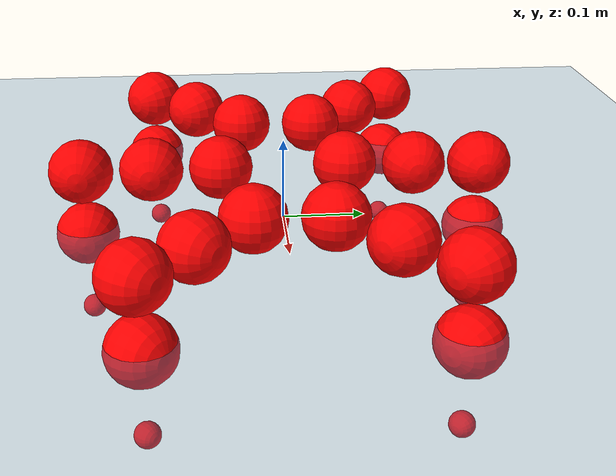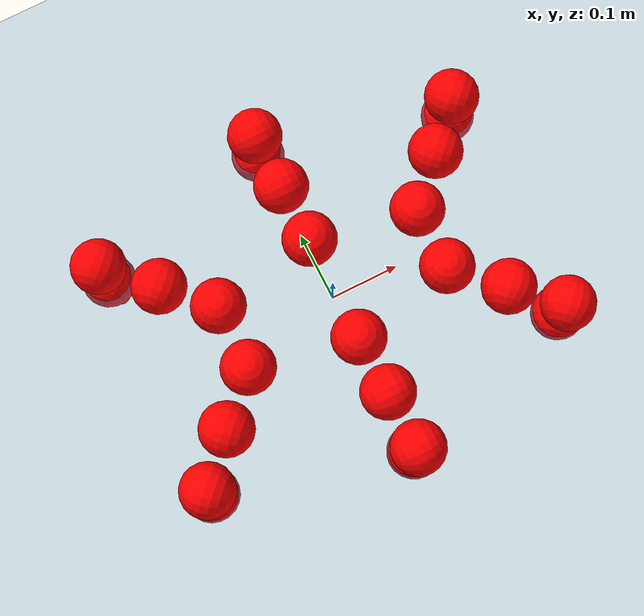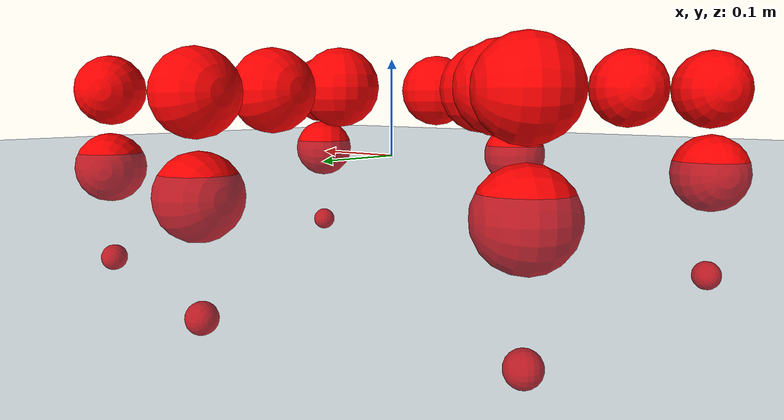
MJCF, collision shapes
<mujoco model="Golem">
  <compiler angle="radian" assetdir="assets" balanceinertia="true" inertiafromgeom="false"/>

  <option timestep="0.005" density="1.2" viscosity="2e-05"/>

  <size nkey="1"/>

  <visual>
    <quality shadowsize="8192"/>
    <map shadowclip="0.5"/>
  </visual>

  <default>
    <default class="/">
      <joint armature="0.01" damping="0.01" frictionloss="0.01"/>
      <geom contype="0" conaffinity="0" group="1" solref="-1000 -80"/>
      <site size="0.01 0.005 0.005" group="5"/>
      <general forcelimited="true" biastype="affine" gainprm="25" biasprm="0 -25 -0.5"/>
      <default class="visual">
        <geom type="mesh" group="2"/>
      </default>
      <default class="collision">
        <geom group="3"/>
      </default>
      <default class="foot">
        <geom size="0.01 0 0" condim="6" group="4" priority="1" solimp="0.015 1 0.01"/>
      </default>
      <default class="reward_collision_sphere">
        <geom group="5" rgba="1 0 0 1"/>
      </default>
    </default>
  </default>

  <asset>
    <texture type="skybox" colorspace="auto" name="//unnamed_texture_0" builtin="gradient" rgb1="0.95 0.95 0.95" rgb2="0.95 0.95 0.95" width="100" height="600"/>
    <texture type="2d" colorspace="auto" name="texplane" builtin="checker" rgb1="0.345 0.575 0.748" rgb2="0.345 0.575 0.748" markrgb="1 1 1" width="512" height="512"/>
    <material name="MatPlane" class="/" texture="texplane" texuniform="true" texrepeat="2 2" specular="0.9"/>
    <mesh name="body" class="/" file="body.stl" scale="0.001 0.001 0.001"/>
    <mesh name="coxa" class="/" file="coxa.stl" scale="0.001 0.001 0.001"/>
    <mesh name="femur" class="/" file="femur.stl" scale="0.001 0.001 0.001"/>
    <mesh name="tibia" class="/" file="tibia.stl" scale="0.001 0.001 0.001"/>
    <mesh name="tarsus" class="/" file="tarsus.stl" scale="0.001 0.001 0.001"/>
  </asset>

  <worldbody>
    <geom name="floor" class="/" size="100 100 0.125" type="plane" group="0" material="MatPlane"/>
    <light name="toplight_shadow" class="/" pos="0 0 5" dir="0.0990148 0.0990148 -0.990148" type="directional" ambient="0.04 0.04 0.04" diffuse="0.55 0.55 0.55" specular="0.12 0.12 0.12"/>
    <light name="toplight_fill" class="/" pos="0 0 5" dir="0.0990148 0.0990148 -0.990148" type="directional" castshadow="false" ambient="0.04 0.04 0.04" diffuse="0.3 0.3 0.3" specular="0.08 0.08 0.08"/>
    <body name="trunk" pos="0.000674919 0.000550561 -0.00239385" quat="1 -9.03614e-05 -5.79711e-05 0.000114049">
      <inertial pos="8.57327e-05 -0.000103204 -0.00214468" quat="0.99999 -0.00194855 0.00133939 -0.00379761" mass="3.33077" diaginertia="0.00773572 0.00299296 0.0191"/>
      <joint name="//unnamed_joint_0" type="free"/>
      <geom name="//unnamed_geom_1" class="/" pos="0 0 0.0729199" quat="1 0 0 0" type="mesh" rgba="0.9 0.9 0.9 1" mesh="body"/>
      <site name="imu" class="/" pos="0.126872 -0.00242775 0.109227" size="0.00958983"/>
      <camera name="track" class="/" pos="0 -1.56575 0" quat="0.707107 0.707107 0 0" mode="trackcom"/>
      <camera name="ego_camera" class="/" pos="0.124111 0 0.113937" quat="-0.5 -0.5 0.5 0.5"/>
      <body name="coxa_RR" pos="-0.170685 -0.0656803 0.0724915" quat="0.382664 1.91903e-05 1.05643e-05 -0.923887">
        <inertial pos="0.00018412 -0.00228985 0.000974021" quat="0.999997 -0.00174126 -0.00067167 -0.00167375" mass="0.170923" diaginertia="0.00761152 0.00291464 0.018346"/>
        <joint name="coxa_joint_RR" class="/" pos="0 0 0" axis="-0.00627875 0.00459313 -0.99997" range="-3.13582 3.12802" armature="0.00965246" damping="0.0142395" frictionloss="0.00972247"/>
        <geom name="//unnamed_geom_2" class="/" type="mesh" rgba="0.2 0.2 0.2 1" mesh="coxa"/>
        <geom name="//unnamed_geom_3" class="reward_collision_sphere" size="0.0383593" pos="-0.0286411 0 0"/>
        <body name="femur_RR" pos="0.0581585 -0.000701968 0.000338659" quat="0.499793 -0.500056 0.499986 0.500164">
          <inertial pos="0.000849516 -0.000229571 0.000328183" quat="0.999999 2.14273e-05 0.00141984 -0.00025393" mass="0.175766" diaginertia="0.00789546 0.00290914 0.0190752"/>
          <joint name="femur_joint_RR" class="/" pos="0 0 0" axis="0.000955863 -0.00122837 -0.999999" range="-3.15638 3.09701" armature="0.00928647" damping="0" frictionloss="0.00997547"/>
          <geom name="//unnamed_geom_4" class="/" type="mesh" rgba="0.9 0.9 0.9 1" mesh="femur"/>
          <geom name="//unnamed_geom_5" class="reward_collision_sphere" size="0.0383593"/>
          <body name="tibia_RR" pos="0.00112111 -0.083567 0.00190569" quat="-0.000193501 1 -2.54993e-05 -0.000118708">
            <inertial pos="-0.00166294 -6.9066e-05 -8.5628e-05" quat="0.999985 -0.00153567 -0.00190221 -0.00490999" mass="0.176042" diaginertia="0.00783688 0.00293159 0.0192246"/>
            <joint name="tibia_joint_RR" class="/" pos="0 0 0" axis="0.00395839 0.000154542 0.999992" range="-3.18561 3.15778" armature="0.00915411" damping="0" frictionloss="0.00981285"/>
            <geom name="//unnamed_geom_6" class="/" type="mesh" rgba="0.2 0.2 0.2 1" mesh="tibia"/>
            <geom name="//unnamed_geom_7" class="reward_collision_sphere" size="0.0383593"/>
            <body name="tarsus_RR" pos="0.0821683 0.00135338 0.00032641" quat="1 -0.000400016 -0.000222799 -2.62427e-05">
              <inertial pos="0.0561326 0.00240465 -0.00085361" quat="0.503435 0.496438 0.500646 0.499455" mass="0.175252" diaginertia="0.00792527 0.00291916 0.019207"/>
              <joint name="tarsus_joint_RR" class="/" pos="0 0 0" axis="0.000473364 -0.000492003 1" range="-3.13652 3.13487" armature="0.0101146" damping="0.00803335" frictionloss="0.0102108"/>
              <geom name="//unnamed_geom_8" class="/" type="mesh" rgba="0.9 0.9 0.9 1" mesh="tarsus"/>
              <geom name="foot_1" class="foot" size="0.00923212" pos="0.106927 0 0" quat="0 -0.707107 0 0.707107"/>
              <geom name="//unnamed_geom_10" class="reward_collision_sphere" size="0.0383593"/>
              <geom name="//unnamed_geom_11" class="reward_collision_sphere" size="0.0143847" pos="0.10263 0 0"/>
              <site name="foot_1" class="foot" pos="0.106927 0 0" quat="0 -0.707107 0 0.707107" size="0.00958983"/>
            </body>
          </body>
        </body>
      </body>
      <body name="coxa_RM" pos="-0.000339734 -0.104641 0.070857" quat="0.706708 -0.000440786 -0.00105106 -0.707504">
        <inertial pos="-0.00168734 0.000254058 0.00109952" quat="1 0.000228239 -8.99702e-06 -0.000620103" mass="0.173841" diaginertia="0.00771902 0.00288554 0.0194881"/>
        <joint name="coxa_joint_RM" class="/" pos="0 0 0" axis="-5.04206e-05 0.000429232 -1" range="-3.18949 3.14285" armature="0.0101904" damping="0.0118969" frictionloss="0.00952537"/>
        <geom name="//unnamed_geom_12" class="/" type="mesh" rgba="0.2 0.2 0.2 1" mesh="coxa"/>
        <geom name="//unnamed_geom_13" class="reward_collision_sphere" size="0.0383593" pos="-0.0286411 0 0"/>
        <body name="femur_RM" pos="0.0546542 0.000568941 -0.000302249" quat="0.500162 -0.500439 0.49919 0.500208">
          <inertial pos="-0.000672671 0.000820302 -0.000875553" quat="0.999956 0.006567 0.00382311 -0.0055578" mass="0.17971" diaginertia="0.0080824 0.00294556 0.0194041"/>
          <joint name="femur_joint_RM" class="/" pos="0 0 0" axis="-0.00200284 -0.00130628 -0.999997" range="-3.13802 3.14223" armature="0.00970429" damping="0.0101626" frictionloss="0.0100429"/>
          <geom name="//unnamed_geom_14" class="/" type="mesh" rgba="0.9 0.9 0.9 1" mesh="femur"/>
          <geom name="//unnamed_geom_15" class="reward_collision_sphere" size="0.0383593"/>
          <body name="tibia_RM" pos="-0.000367477 -0.0834565 0.00143055" quat="-8.64842e-05 1 -4.28418e-05 -3.78148e-06">
            <inertial pos="0.00127651 0.0018452 0.000345523" quat="0.999995 0.00287687 -0.000188464 0.00154206" mass="0.181863" diaginertia="0.008181 0.00302272 0.0197276"/>
            <joint name="tibia_joint_RM" class="/" pos="0 0 0" axis="4.94753e-05 -0.000651162 1" range="-3.12628 3.08783" armature="0.0093966" damping="0" frictionloss="0.00983334"/>
            <geom name="//unnamed_geom_16" class="/" type="mesh" rgba="0.2 0.2 0.2 1" mesh="tibia"/>
            <geom name="//unnamed_geom_17" class="reward_collision_sphere" size="0.0383593"/>
            <body name="tarsus_RM" pos="0.0813824 -0.00226822 0.000211411" quat="1 1.95112e-05 -7.61183e-05 -0.000453749">
              <inertial pos="0.0564569 0.00287455 -0.000894318" quat="0.500168 0.500649 0.499319 0.499864" mass="0.169006" diaginertia="0.00787217 0.00288778 0.0191191"/>
              <joint name="tarsus_joint_RM" class="/" pos="0 0 0" axis="-0.00107572 -3.68464e-05 0.999999" range="-3.13743 3.14739" armature="0.00958715" damping="0.00422887" frictionloss="0.00951827"/>
              <geom name="//unnamed_geom_18" class="/" type="mesh" rgba="0.9 0.9 0.9 1" mesh="tarsus"/>
              <geom name="foot_2" class="foot" size="0.00930325" pos="0.106927 0 0" quat="0 -0.707107 0 0.707107"/>
              <geom name="//unnamed_geom_20" class="reward_collision_sphere" size="0.0383593"/>
              <geom name="//unnamed_geom_21" class="reward_collision_sphere" size="0.0143847" pos="0.10263 0 0"/>
              <site name="foot_2" class="foot" pos="0.106927 0 0" quat="0 -0.707107 0 0.707107" size="0.00958983"/>
            </body>
          </body>
        </body>
      </body>
      <body name="coxa_RF" pos="0.170772 -0.0644947 0.0723721" quat="0.92392 0.000339377 -9.24082e-05 -0.382585">
        <inertial pos="-0.00195186 -0.000871297 0.0017733" quat="1 0.000310421 6.13329e-05 0.000221176" mass="0.179679" diaginertia="0.00814502 0.0029376 0.0196795"/>
        <joint name="coxa_joint_RF" class="/" pos="0 0 0" axis="-0.00297163 0.00172803 -0.999994" range="-3.14064 3.1366" armature="0.00888703" damping="0.0045333" frictionloss="0.00971678"/>
        <geom name="//unnamed_geom_22" class="/" type="mesh" rgba="0.2 0.2 0.2 1" mesh="coxa"/>
        <geom name="//unnamed_geom_23" class="reward_collision_sphere" size="0.0383593" pos="-0.0286411 0 0"/>
        <body name="femur_RF" pos="0.0586757 -0.00140227 -0.000455671" quat="0.500803 -0.499453 0.499817 0.499925">
          <inertial pos="-1.5521e-05 0.000554337 0.000364253" quat="0.999999 -0.000135296 0.000436862 0.00109457" mass="0.167163" diaginertia="0.00790001 0.00288458 0.0185979"/>
          <joint name="femur_joint_RF" class="/" pos="0 0 0" axis="0.00211165 0.000466478 -0.999998" range="-3.15863 3.0931" armature="0.00845896" damping="0.0033008" frictionloss="0.00839338"/>
          <geom name="//unnamed_geom_24" class="/" type="mesh" rgba="0.9 0.9 0.9 1" mesh="femur"/>
          <geom name="//unnamed_geom_25" class="reward_collision_sphere" size="0.0383593"/>
          <body name="tibia_RF" pos="-0.000986433 -0.0822282 0.00215727" quat="0.000132534 1 8.29338e-06 0.000120095">
            <inertial pos="-0.00205714 0.000621476 -9.9328e-06" quat="0.999997 -0.00172119 0.00101426 -0.00153852" mass="0.176605" diaginertia="0.00776375 0.00292933 0.0191309"/>
            <joint name="tibia_joint_RF" class="/" pos="0 0 0" axis="0.000628375 0.00101451 0.999999" range="-3.1343 3.14785" armature="0.00941227" damping="0" frictionloss="0.00959922"/>
            <geom name="//unnamed_geom_26" class="/" type="mesh" rgba="0.2 0.2 0.2 1" mesh="tibia"/>
            <geom name="//unnamed_geom_27" class="reward_collision_sphere" size="0.0383593"/>
            <body name="tarsus_RF" pos="0.0821707 -0.00156496 -0.0016851" quat="1 0.000147172 -0.000359644 -8.4975e-05">
              <inertial pos="0.0555124 0.000128431 -0.000422954" quat="0.491619 0.505521 0.506763 0.495933" mass="0.176081" diaginertia="0.0079794 0.00298642 0.0187297"/>
              <joint name="tarsus_joint_RF" class="/" pos="0 0 0" axis="-0.00118376 0.000592319 0.999999" stiffness="0.000326341" range="-3.12373 3.14154" armature="0.00844622" damping="0.00237847" frictionloss="0.00873608"/>
              <geom name="//unnamed_geom_28" class="/" type="mesh" rgba="0.9 0.9 0.9 1" mesh="tarsus"/>
              <geom name="foot_3" class="foot" size="0.00923981" pos="0.106927 0 0" quat="0 -0.707107 0 0.707107"/>
              <geom name="//unnamed_geom_30" class="reward_collision_sphere" size="0.0383593"/>
              <geom name="//unnamed_geom_31" class="reward_collision_sphere" size="0.0143847" pos="0.10263 0 0"/>
              <site name="foot_3" class="foot" pos="0.106927 0 0" quat="0 -0.707107 0 0.707107" size="0.00958983"/>
            </body>
          </body>
        </body>
      </body>
      <body name="coxa_LR" pos="-0.169345 0.0678754 0.0714975" quat="0.38288 -5.39906e-06 2.67735e-05 0.923798">
        <inertial pos="-0.000843703 -0.000241412 -8.63283e-05" quat="0.999932 0.00876667 -0.00629722 0.00450299" mass="0.17829" diaginertia="0.00790666 0.00298922 0.0191748"/>
        <joint name="coxa_joint_LR" class="/" pos="0 0 0" axis="3.87061e-05 -2.51521e-05 -1" range="-3.13683 3.12703" armature="0.0102578" damping="0.0141119" frictionloss="0.00910301"/>
        <geom name="//unnamed_geom_32" class="/" type="mesh" rgba="0.2 0.2 0.2 1" mesh="coxa"/>
        <geom name="//unnamed_geom_33" class="reward_collision_sphere" size="0.0383593" pos="-0.0286411 0 0"/>
        <body name="femur_LR" pos="0.055977 -0.000693903 0.000814877" quat="0.499963 -0.499979 0.49977 0.500288">
          <inertial pos="-0.00185964 -0.00236191 0.00206733" quat="1 -3.61327e-05 -5.53161e-05 -7.82361e-05" mass="0.180543" diaginertia="0.00786368 0.00300182 0.0193709"/>
          <joint name="femur_joint_LR" class="/" pos="0 0 0" axis="0.0066143 -0.0109192 0.999919" range="-3.15623 3.11609" armature="0.010805" damping="0.000129622" frictionloss="0.00877568"/>
          <geom name="//unnamed_geom_34" class="/" type="mesh" rgba="0.9 0.9 0.9 1" mesh="femur"/>
          <geom name="//unnamed_geom_35" class="reward_collision_sphere" size="0.0383593"/>
          <body name="tibia_LR" pos="0.00142256 -0.0874815 -0.000761645" quat="-7.89401e-05 1 0.000135268 0.000229851">
            <inertial pos="-0.000146128 -0.00214466 8.46789e-06" quat="0.999998 -0.000303248 0.00182207 -4.01354e-05" mass="0.171843" diaginertia="0.00782986 0.00290226 0.0184236"/>
            <joint name="tibia_joint_LR" class="/" pos="0 0 0" axis="-0.00925468 0.000200283 -0.999957" range="-3.13978 3.09848" armature="0.00947473" damping="0" frictionloss="0.00995147"/>
            <geom name="//unnamed_geom_36" class="/" type="mesh" rgba="0.2 0.2 0.2 1" mesh="tibia"/>
            <geom name="//unnamed_geom_37" class="reward_collision_sphere" size="0.0383593"/>
            <body name="tarsus_LR" pos="0.0873057 -0.000687387 0.000155027" quat="1 3.86125e-06 0.000255037 -0.000112715">
              <inertial pos="0.0588703 -0.000277407 -0.00111328" quat="0.501893 0.499894 0.499293 0.498914" mass="0.175164" diaginertia="0.0079255 0.00293898 0.01897"/>
              <joint name="tarsus_joint_LR" class="/" pos="0 0 0" axis="0.000845213 -0.00193422 -0.999998" range="-3.16606 3.13365" armature="0.00881349" damping="0.0273615" frictionloss="0.00940078"/>
              <geom name="//unnamed_geom_38" class="/" type="mesh" rgba="0.9 0.9 0.9 1" mesh="tarsus"/>
              <geom name="foot_4" class="foot" size="0.00978471" pos="0.106927 0 0" quat="0.707107 0 -0.707107 0"/>
              <geom name="//unnamed_geom_40" class="reward_collision_sphere" size="0.0383593"/>
              <geom name="//unnamed_geom_41" class="reward_collision_sphere" size="0.0143847" pos="0.10263 0 0"/>
              <site name="foot_4" class="foot" pos="0.106927 0 0" quat="0.707107 0 -0.707107 0" size="0.00958983"/>
            </body>
          </body>
        </body>
      </body>
      <body name="coxa_LM" pos="0.00188529 0.102481 0.0735651" quat="0.707057 -4.53512e-05 0.000163 0.707157">
        <inertial pos="0.00074984 -0.00110717 -0.000417748" quat="0.999999 -0.000675532 -0.000569113 0.00129843" mass="0.171438" diaginertia="0.00803189 0.00294585 0.0188339"/>
        <joint name="coxa_joint_LM" class="/" pos="0 0 0" axis="-0.00951873 0.00257735 -0.999951" range="-3.15328 3.18869" armature="0.00956116" damping="0.00964413" frictionloss="0.00973799"/>
        <geom name="//unnamed_geom_42" class="/" type="mesh" rgba="0.2 0.2 0.2 1" mesh="coxa"/>
        <geom name="//unnamed_geom_43" class="reward_collision_sphere" size="0.0383593" pos="-0.0286411 0 0"/>
        <body name="femur_LM" pos="0.0563408 0.000736337 -0.00328451" quat="0.499285 -0.499934 0.500133 0.500647">
          <inertial pos="0.00106632 -6.61013e-05 -0.000780173" quat="1 0.000336351 0.000265007 6.35586e-05" mass="0.184624" diaginertia="0.0081424 0.00298777 0.0198727"/>
          <joint name="femur_joint_LM" class="/" pos="0 0 0" axis="-0.00333532 -0.00229893 0.999992" stiffness="0.00927496" range="-3.18419 3.09609" armature="0.00913041" damping="0" frictionloss="0.00994966"/>
          <geom name="//unnamed_geom_44" class="/" type="mesh" rgba="0.9 0.9 0.9 1" mesh="femur"/>
          <geom name="//unnamed_geom_45" class="reward_collision_sphere" size="0.0383593"/>
          <body name="tibia_LM" pos="0.00188038 -0.081389 -0.000183403" quat="-0.000182561 1 -4.37007e-05 -0.000514334">
            <inertial pos="0.000718796 -0.00147675 0.000281541" quat="0.999988 -0.00337996 -0.00343988 0.000796064" mass="0.174739" diaginertia="0.00796545 0.00285297 0.0192557"/>
            <joint name="tibia_joint_LM" class="/" pos="0 0 0" axis="0.00142285 -0.00195374 -0.999997" range="-3.1465 3.13963" armature="0.00862836" damping="0" frictionloss="0.00952577"/>
            <geom name="//unnamed_geom_46" class="/" type="mesh" rgba="0.2 0.2 0.2 1" mesh="tibia"/>
            <geom name="//unnamed_geom_47" class="reward_collision_sphere" size="0.0383593"/>
            <body name="tarsus_LM" pos="0.0859657 -0.0004902 -0.000714705" quat="1 9.68266e-05 0.000220239 -0.000139087">
              <inertial pos="0.0578858 0.00030262 0.00149396" quat="0.500135 0.500935 0.498142 0.500783" mass="0.177593" diaginertia="0.00767848 0.00299187 0.0192569"/>
              <joint name="tarsus_joint_LM" class="/" pos="0 0 0" axis="0.000157449 0.000307811 -1" range="-3.11737 3.14622" armature="0.00937334" damping="0.00137646" frictionloss="0.00961581"/>
              <geom name="//unnamed_geom_48" class="/" type="mesh" rgba="0.9 0.9 0.9 1" mesh="tarsus"/>
              <geom name="foot_5" class="foot" size="0.00875347" pos="0.106927 0 0" quat="0.707107 0 -0.707107 0"/>
              <geom name="//unnamed_geom_50" class="reward_collision_sphere" size="0.0383593"/>
              <geom name="//unnamed_geom_51" class="reward_collision_sphere" size="0.0143847" pos="0.10263 0 0"/>
              <site name="foot_5" class="foot" pos="0.106927 0 0" quat="0.707107 0 -0.707107 0" size="0.00958983"/>
            </body>
          </body>
        </body>
      </body>
      <body name="coxa_LF" pos="0.172134 0.0650033 0.0723223" quat="0.924274 -0.000372895 0.000296783 0.38173">
        <inertial pos="0.000547733 -8.72851e-05 0.00160381" quat="0.999988 -0.00189272 0.00452799 -0.000129753" mass="0.178266" diaginertia="0.00805401 0.00287706 0.0193588"/>
        <joint name="coxa_joint_LF" class="/" pos="0 0 0" axis="0.00992822 0.00489901 -0.999939" range="-3.14978 3.14349" armature="0.00970828" damping="0.0073885" frictionloss="0.0088276"/>
        <geom name="//unnamed_geom_52" class="/" type="mesh" rgba="0.2 0.2 0.2 1" mesh="coxa"/>
        <geom name="//unnamed_geom_53" class="reward_collision_sphere" size="0.0383593" pos="-0.0286411 0 0"/>
        <body name="femur_LF" pos="0.0577261 0.000609592 -0.000305125" quat="0.49996 -0.500007 0.500283 0.49975">
          <inertial pos="-0.000145885 5.01967e-05 0.0021869" quat="0.999993 -0.00143912 -0.00282947 0.0019089" mass="0.182294" diaginertia="0.00781281 0.00297853 0.0192812"/>
          <joint name="femur_joint_LF" class="/" pos="0 0 0" axis="-0.000392582 0.00700342 0.999975" range="-3.13584 3.1383" armature="0.00977658" damping="0.00643232" frictionloss="0.0105152"/>
          <geom name="//unnamed_geom_54" class="/" type="mesh" rgba="0.9 0.9 0.9 1" mesh="femur"/>
          <geom name="//unnamed_geom_55" class="reward_collision_sphere" size="0.0383593"/>
          <body name="tibia_LF" pos="0.0006106 -0.0828017 0.00222505" quat="0.00107331 0.999999 -0.000156515 -0.000425728">
            <inertial pos="-0.000620444 0.00128455 -0.00194145" quat="0.999934 -0.00419555 -0.0009166 -0.0106994" mass="0.181647" diaginertia="0.007994 0.0029533 0.0192251"/>
            <joint name="tibia_joint_LF" class="/" pos="0 0 0" axis="-0.00191585 -0.00158665 -0.999997" range="-3.08894 3.12615" armature="0.00948377" damping="0.013401" frictionloss="0.00961486"/>
            <geom name="//unnamed_geom_56" class="/" type="mesh" rgba="0.2 0.2 0.2 1" mesh="tibia"/>
            <geom name="//unnamed_geom_57" class="reward_collision_sphere" size="0.0383593"/>
            <body name="tarsus_LF" pos="0.0858646 0.00209601 0.000549142" quat="1 0.000132428 -7.6518e-05 -0.000151795">
              <inertial pos="0.0552217 0.00109419 -0.000278479" quat="0.500421 0.49999 0.499996 0.499592" mass="0.174163" diaginertia="0.00786074 0.00289844 0.0194886"/>
              <joint name="tarsus_joint_LF" class="/" pos="0 0 0" axis="0.0105875 0.00251279 -0.999941" range="-3.13775 3.10738" armature="0.0106106" damping="0.00579577" frictionloss="0.0107992"/>
              <geom name="//unnamed_geom_58" class="/" type="mesh" rgba="0.9 0.9 0.9 1" mesh="tarsus"/>
              <geom name="foot_6" class="foot" size="0.00913892" pos="0.106927 0 0" quat="0.707107 0 -0.707107 0"/>
              <geom name="//unnamed_geom_60" class="reward_collision_sphere" size="0.0383593"/>
              <geom name="//unnamed_geom_61" class="reward_collision_sphere" size="0.0143847" pos="0.10263 0 0"/>
              <site name="foot_6" class="foot" pos="0.106927 0 0" quat="0.707107 0 -0.707107 0" size="0.00958983"/>
            </body>
          </body>
        </body>
      </body>
    </body>
  </worldbody>

  <contact>
    <pair class="/" geom1="floor" geom2="foot_1" name="//unnamed_contact_0"/>
    <pair class="/" geom1="floor" geom2="foot_2" name="//unnamed_contact_1"/>
    <pair class="/" geom1="floor" geom2="foot_3" name="//unnamed_contact_2"/>
    <pair class="/" geom1="floor" geom2="foot_4" name="//unnamed_contact_3"/>
    <pair class="/" geom1="floor" geom2="foot_5" name="//unnamed_contact_4"/>
    <pair class="/" geom1="floor" geom2="foot_6" name="//unnamed_contact_5"/>
  </contact>

  <actuator>
    <general name="coxa_joint_RR" class="/" joint="coxa_joint_RR" forcerange="-7.08227 7.08227" gainprm="23.213" biasprm="0 -23.213 -0.497478"/>
    <general name="femur_joint_RR" class="/" joint="femur_joint_RR" forcerange="-7.27733 7.27733" gainprm="23.213" biasprm="0 -23.213 -0.497478"/>
    <general name="tibia_joint_RR" class="/" joint="tibia_joint_RR" forcerange="-6.67631 6.67631" gainprm="23.213" biasprm="0 -23.213 -0.497478"/>
    <general name="tarsus_joint_RR" class="/" joint="tarsus_joint_RR" forcerange="-6.58727 6.58727" gainprm="23.213" biasprm="0 -23.213 -0.497478"/>
    <general name="coxa_joint_RM" class="/" joint="coxa_joint_RM" forcerange="-6.42336 6.42336" gainprm="23.213" biasprm="0 -23.213 -0.497478"/>
    <general name="femur_joint_RM" class="/" joint="femur_joint_RM" forcerange="-6.90659 6.90659" gainprm="23.213" biasprm="0 -23.213 -0.497478"/>
    <general name="tibia_joint_RM" class="/" joint="tibia_joint_RM" forcerange="-7.08042 7.08042" gainprm="23.213" biasprm="0 -23.213 -0.497478"/>
    <general name="tarsus_joint_RM" class="/" joint="tarsus_joint_RM" forcerange="-6.87834 6.87834" gainprm="23.213" biasprm="0 -23.213 -0.497478"/>
    <general name="coxa_joint_RF" class="/" joint="coxa_joint_RF" forcerange="-7.12526 7.12526" gainprm="23.213" biasprm="0 -23.213 -0.497478"/>
    <general name="femur_joint_RF" class="/" joint="femur_joint_RF" forcerange="-7.66922 7.66922" gainprm="23.213" biasprm="0 -23.213 -0.497478"/>
    <general name="tibia_joint_RF" class="/" joint="tibia_joint_RF" forcerange="-7.59895 7.59895" gainprm="23.213" biasprm="0 -23.213 -0.497478"/>
    <general name="tarsus_joint_RF" class="/" joint="tarsus_joint_RF" forcerange="-7.54011 7.54011" gainprm="23.213" biasprm="0 -23.213 -0.497478"/>
    <general name="coxa_joint_LR" class="/" joint="coxa_joint_LR" forcerange="-7.04697 7.04697" gainprm="23.213" biasprm="0 -23.213 -0.497478"/>
    <general name="femur_joint_LR" class="/" joint="femur_joint_LR" forcerange="-6.93505 6.93505" gainprm="23.213" biasprm="0 -23.213 -0.497478"/>
    <general name="tibia_joint_LR" class="/" joint="tibia_joint_LR" forcerange="-7.65963 7.65963" gainprm="23.213" biasprm="0 -23.213 -0.497478"/>
    <general name="tarsus_joint_LR" class="/" joint="tarsus_joint_LR" forcerange="-7.59685 7.59685" gainprm="23.213" biasprm="0 -23.213 -0.497478"/>
    <general name="coxa_joint_LM" class="/" joint="coxa_joint_LM" forcerange="-7.1316 7.1316" gainprm="23.213" biasprm="0 -23.213 -0.497478"/>
    <general name="femur_joint_LM" class="/" joint="femur_joint_LM" forcerange="-6.90714 6.90714" gainprm="23.213" biasprm="0 -23.213 -0.497478"/>
    <general name="tibia_joint_LM" class="/" joint="tibia_joint_LM" forcerange="-7.02421 7.02421" gainprm="23.213" biasprm="0 -23.213 -0.497478"/>
    <general name="tarsus_joint_LM" class="/" joint="tarsus_joint_LM" forcerange="-7.24278 7.24278" gainprm="23.213" biasprm="0 -23.213 -0.497478"/>
    <general name="coxa_joint_LF" class="/" joint="coxa_joint_LF" forcerange="-6.962 6.962" gainprm="23.213" biasprm="0 -23.213 -0.497478"/>
    <general name="femur_joint_LF" class="/" joint="femur_joint_LF" forcerange="-7.51433 7.51433" gainprm="23.213" biasprm="0 -23.213 -0.497478"/>
    <general name="tibia_joint_LF" class="/" joint="tibia_joint_LF" forcerange="-7.44101 7.44101" gainprm="23.213" biasprm="0 -23.213 -0.497478"/>
    <general name="tarsus_joint_LF" class="/" joint="tarsus_joint_LF" forcerange="-7.11224 7.11224" gainprm="23.213" biasprm="0 -23.213 -0.497478"/>
  </actuator>

  <sensor>
    <gyro site="imu" name="imu_angular_velocity"/>
    <velocimeter site="imu" name="imu_linear_velocity"/>
    <framelinvel objtype="site" objname="foot_1" name="foot_1_global_linear_velocity"/>
    <framelinvel objtype="site" objname="foot_2" name="foot_2_global_linear_velocity"/>
    <framelinvel objtype="site" objname="foot_3" name="foot_3_global_linear_velocity"/>
    <framelinvel objtype="site" objname="foot_4" name="foot_4_global_linear_velocity"/>
    <framelinvel objtype="site" objname="foot_5" name="foot_5_global_linear_velocity"/>
    <framelinvel objtype="site" objname="foot_6" name="foot_6_global_linear_velocity"/>
  </sensor>

  <keyframe>
    <key name="home" qpos="0 0 0.1457 1 0 0 0 0 0 0 0 0 0 0 0 0 0 0 0 0 0 0 0 0 0 0 0 0 0 0 0"/>
  </keyframe>
</mujoco>
